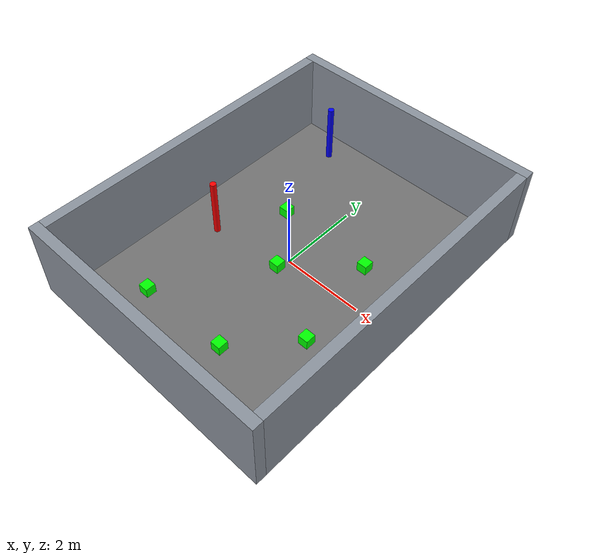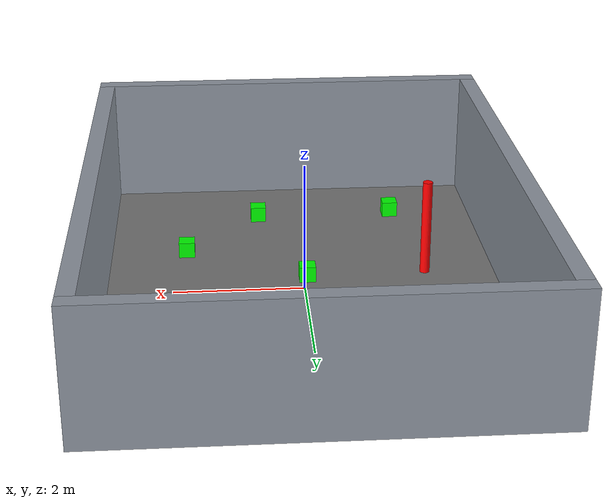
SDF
<?xml version='1.0' encoding='utf-8'?>
<sdf version="1.9">

  <world name="random_world">
    <scene>
      <ambient>0.65 0.65 0.65 1</ambient>
      <background>0.82 0.88 0.95 1</background>
      <shadows>true</shadows>
    </scene>

    <physics name="fast" type="ignored">
      <max_step_size>0.01</max_step_size>
      <real_time_update_rate>400</real_time_update_rate>
      <real_time_factor>2.0</real_time_factor>
    </physics>

    <plugin filename="ignition-gazebo-physics-system" name="ignition::gazebo::systems::Physics">
      <include_entity_names>true</include_entity_names>
    </plugin>
    <plugin filename="ignition-gazebo-sensors-system" name="ignition::gazebo::systems::Sensors">
      <render_engine>ogre2</render_engine>
    </plugin>
    <plugin filename="ignition-gazebo-user-commands-system" name="ignition::gazebo::systems::UserCommands" />
    <plugin filename="libignition-gazebo-contact-system.so" name="ignition::gazebo::systems::Contact">
      <topic>/world/random_world/physics/contacts</topic>
    </plugin>
    <plugin filename="ignition-gazebo-scene-broadcaster-system" name="ignition::gazebo::systems::SceneBroadcaster" />

    <light name="sun" type="directional">
      <pose>0 0 10 0 0 0</pose>
      <cast_shadows>true</cast_shadows>
      <intensity>1</intensity>
      <direction>-0.5 0.5 -1</direction>
      <diffuse>1 1 1 1</diffuse>
      <specular>0.1 0.1 0.1 1</specular>
      <attenuation>
        <range>20</range><linear>0.1</linear><constant>0.9</constant><quadratic>0.01</quadratic>
      </attenuation>
    </light>

    <model name="ground_plane">
      <static>true</static>
      <pose>0 0 -0.01 0 0 0</pose>
      <link name="link">
        <collision name="collision">
          <geometry><box><size>6 8 0.02</size></box></geometry>
        </collision>
        <visual name="visual">
          <geometry><box><size>6 8 0.02</size></box></geometry>
          <material>
            <ambient>0.45 0.45 0.45 1</ambient>
            <diffuse>0.45 0.45 0.45 1</diffuse>
          </material>
        </visual>
      </link>
    </model>

    <model name="north_wall">
      <static>true</static><pose>0 4.125 1 0 0 0</pose>
      <link name="link">
        <collision name="collision"><geometry><box><size>6.5 0.25 2</size></box></geometry></collision>
        <visual name="visual"><geometry><box><size>6.5 0.25 2</size></box></geometry><material><ambient>0.55 0.58 0.62 1</ambient><diffuse>0.55 0.58 0.62 1</diffuse></material></visual>
      </link>
    </model>
    <model name="south_wall">
      <static>true</static><pose>0 -4.125 1 0 0 0</pose>
      <link name="link">
        <collision name="collision"><geometry><box><size>6.5 0.25 2</size></box></geometry></collision>
        <visual name="visual"><geometry><box><size>6.5 0.25 2</size></box></geometry><material><ambient>0.55 0.58 0.62 1</ambient><diffuse>0.55 0.58 0.62 1</diffuse></material></visual>
      </link>
    </model>
    <model name="east_wall">
      <static>true</static><pose>3.125 0 1 0 0 0</pose>
      <link name="link">
        <collision name="collision"><geometry><box><size>0.25 8 2</size></box></geometry></collision>
        <visual name="visual"><geometry><box><size>0.25 8 2</size></box></geometry><material><ambient>0.55 0.58 0.62 1</ambient><diffuse>0.55 0.58 0.62 1</diffuse></material></visual>
      </link>
    </model>
    <model name="west_wall">
      <static>true</static><pose>-3.125 0 1 0 0 0</pose>
      <link name="link">
        <collision name="collision"><geometry><box><size>0.25 8 2</size></box></geometry></collision>
        <visual name="visual"><geometry><box><size>0.25 8 2</size></box></geometry><material><ambient>0.55 0.58 0.62 1</ambient><diffuse>0.55 0.58 0.62 1</diffuse></material></visual>
      </link>
    </model>

    <model name="red_box"><pose>-1.911933 -0.473078 0.006 0 0 0.37</pose><static>true</static><link name="link"><visual name="visual"><pose>0 0 0.75 0 0 0</pose><visibility_flags>4</visibility_flags><geometry><cylinder><radius>0.075</radius><length>1.5</length></cylinder></geometry><material><ambient>1 0 0 1</ambient><diffuse>1 0 0 1</diffuse><emissive>1 0 0 1</emissive></material></visual></link></model>
    <model name="blue_box"><pose>-1.768196 3.334686 0.006 0 0 2.31</pose><static>true</static><link name="link"><visual name="visual"><pose>0 0 0.75 0 0 0</pose><visibility_flags>4</visibility_flags><geometry><cylinder><radius>0.075</radius><length>1.5</length></cylinder></geometry><material><ambient>0 0 1 1</ambient><diffuse>0 0 1 1</diffuse><emissive>0 0 1 1</emissive></material></visual></link></model>

    <model name="generic_delivery_box_0"><pose>1.800211 -1.363388 0.125 0 0 0</pose><static>true</static><link name="link"><collision name="collision"><geometry><box><size>0.25 0.25 0.25</size></box></geometry></collision><visual name="visual"><geometry><box><size>0.25 0.25 0.25</size></box></geometry><material><ambient>0 1 0 1</ambient><diffuse>0 1 0 1</diffuse></material></visual></link></model>
    <model name="generic_delivery_box_1"><pose>0.606741 -2.716105 0.125 0 0 0</pose><static>true</static><link name="link"><collision name="collision"><geometry><box><size>0.25 0.25 0.25</size></box></geometry></collision><visual name="visual"><geometry><box><size>0.25 0.25 0.25</size></box></geometry><material><ambient>0 1 0 1</ambient><diffuse>0 1 0 1</diffuse></material></visual></link></model>
    <model name="generic_delivery_box_2"><pose>-0.061825 -0.334806 0.125 0 0 0</pose><static>true</static><link name="link"><collision name="collision"><geometry><box><size>0.25 0.25 0.25</size></box></geometry></collision><visual name="visual"><geometry><box><size>0.25 0.25 0.25</size></box></geometry><material><ambient>0 1 0 1</ambient><diffuse>0 1 0 1</diffuse></material></visual></link></model>
    <model name="generic_delivery_box_3"><pose>-1.640569 -2.789975 0.125 0 0 0</pose><static>true</static><link name="link"><collision name="collision"><geometry><box><size>0.25 0.25 0.25</size></box></geometry></collision><visual name="visual"><geometry><box><size>0.25 0.25 0.25</size></box></geometry><material><ambient>0 1 0 1</ambient><diffuse>0 1 0 1</diffuse></material></visual></link></model>
    <model name="generic_delivery_box_4"><pose>1.391933 1.001617 0.125 0 0 0</pose><static>true</static><link name="link"><collision name="collision"><geometry><box><size>0.25 0.25 0.25</size></box></geometry></collision><visual name="visual"><geometry><box><size>0.25 0.25 0.25</size></box></geometry><material><ambient>0 1 0 1</ambient><diffuse>0 1 0 1</diffuse></material></visual></link></model>
    <model name="generic_delivery_box_5"><pose>-1.088314 1.049778 0.125 0 0 0</pose><static>true</static><link name="link"><collision name="collision"><geometry><box><size>0.25 0.25 0.25</size></box></geometry></collision><visual name="visual"><geometry><box><size>0.25 0.25 0.25</size></box></geometry><material><ambient>0 1 0 1</ambient><diffuse>0 1 0 1</diffuse></material></visual></link></model>
    </world>
</sdf>
